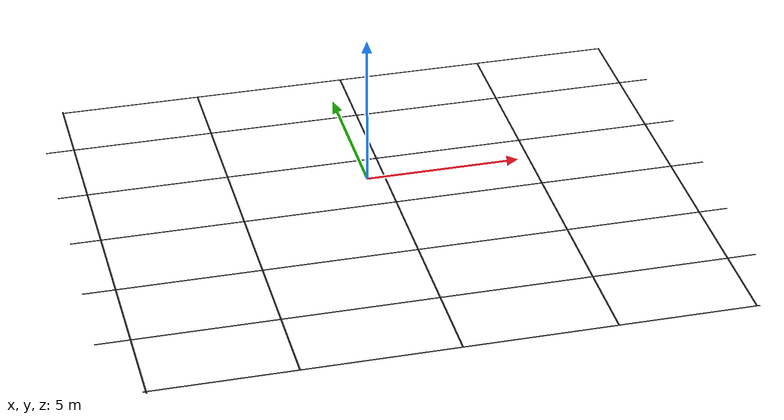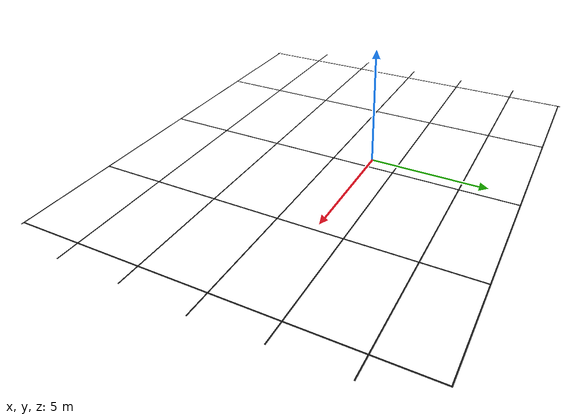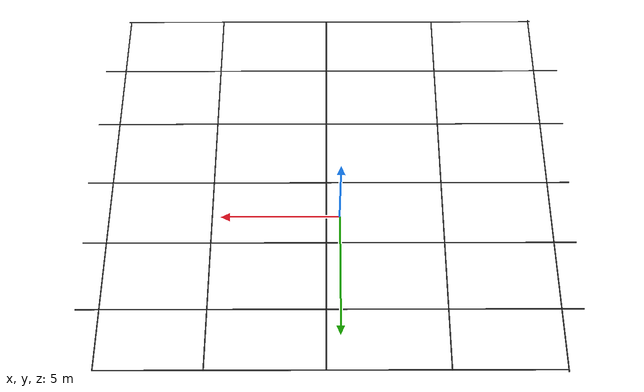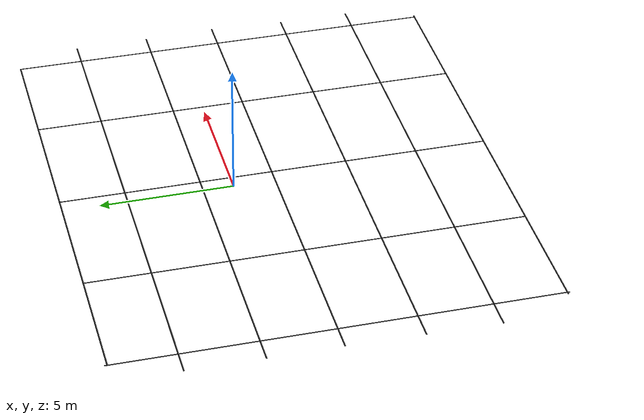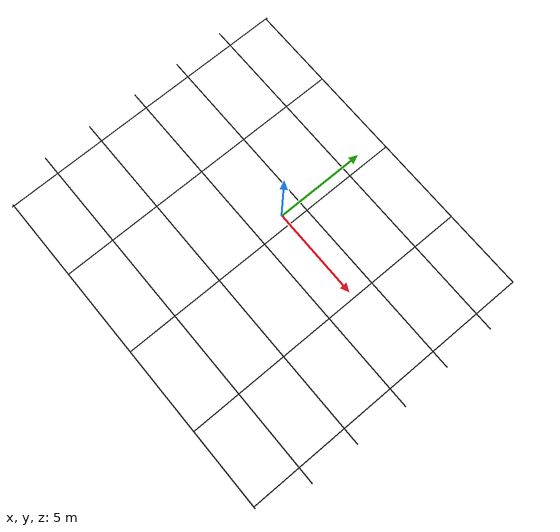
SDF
<?xml version='1.0'?>
<sdf version='1.4'>
  <model name='shop_floor_tape'>
    <link name='Wall_25'>
      <collision name='Wall_25_Collision'>
        <geometry>
          <box>
            <size>18.567 0.05 0.001</size>
          </box>
        </geometry>
        <pose>0 0 0.0005 0 -0 0</pose>
      </collision>
      <visual name='Wall_25_Visual'>
        <pose>0 0 0.0005 0 -0 0</pose>
        <geometry>
          <box>
            <size>18.567 0.05 0.001</size>
          </box>
        </geometry>
        <material>
          <script>
            <uri>file://media/materials/scripts/gazebo.material</uri>
            <name>Gazebo/Black</name>
          </script>
        </material>
      </visual>
      <velocity_decay>
        <linear>0</linear>
        <angular>0</angular>
      </velocity_decay>
      <pose>0.4085 6.385 0 0 -0 0</pose>
    </link>
    <link name='Wall_26'>
      <collision name='Wall_26_Collision'>
        <geometry>
          <box>
            <size>16.2403 0.05 0.001</size>
          </box>
        </geometry>
        <pose>0 0 0.0005 0 -0 0</pose>
      </collision>
      <visual name='Wall_26_Visual'>
        <pose>0 0 0.0005 0 -0 0</pose>
        <geometry>
          <box>
            <size>16.2403 0.05 0.001</size>
          </box>
        </geometry>
        <material>
          <script>
            <uri>file://media/materials/scripts/gazebo.material</uri>
            <name>Gazebo/Black</name>
          </script>
        </material>
      </visual>
      <velocity_decay>
        <linear>0</linear>
        <angular>0</angular>
      </velocity_decay>
      <pose>9.66695 -1.71016 0 0 0 -1.5708</pose>
    </link>
    <link name='Wall_27'>
      <collision name='Wall_27_Collision'>
        <geometry>
          <box>
            <size>18.7165 0.05 0.001</size>
          </box>
        </geometry>
        <pose>0 0 0.0005 0 -0 0</pose>
      </collision>
      <visual name='Wall_27_Visual'>
        <pose>0 0 0.0005 0 -0 0</pose>
        <geometry>
          <box>
            <size>18.7165 0.05 0.001</size>
          </box>
        </geometry>
        <material>
          <script>
            <uri>file://media/materials/scripts/gazebo.material</uri>
            <name>Gazebo/Black</name>
          </script>
        </material>
      </visual>
      <velocity_decay>
        <linear>0</linear>
        <angular>0</angular>
      </velocity_decay>
      <pose>0.408641 -9.80531 0 0 -0 3.14159</pose>
    </link>
    <link name='Wall_28'>
      <collision name='Wall_28_Collision'>
        <geometry>
          <box>
            <size>16.3903 0.05 0.001</size>
          </box>
        </geometry>
        <pose>0 0 0.0005 0 -0 0</pose>
      </collision>
      <visual name='Wall_28_Visual'>
        <pose>0 0 0.0005 0 -0 0</pose>
        <geometry>
          <box>
            <size>16.3903 0.05 0.001</size>
          </box>
        </geometry>
        <material>
          <script>
            <uri>file://media/materials/scripts/gazebo.material</uri>
            <name>Gazebo/Black</name>
          </script>
        </material>
      </visual>
      <velocity_decay>
        <linear>0</linear>
        <angular>0</angular>
      </velocity_decay>
      <pose>-8.84962 -1.71015 0 0 -0 1.5708</pose>
    </link>
    <link name='Wall_30'>
      <collision name='Wall_30_Collision'>
        <geometry>
          <box>
            <size>20.557 0.05 0.001</size>
          </box>
        </geometry>
        <pose>0 0 0.0005 0 -0 0</pose>
      </collision>
      <visual name='Wall_30_Visual'>
        <pose>0 0 0.0005 0 -0 0</pose>
        <geometry>
          <box>
            <size>20.557 0.05 0.001</size>
          </box>
        </geometry>
        <material>
          <script>
            <uri>file://media/materials/scripts/gazebo.material</uri>
            <name>Gazebo/Black</name>
          </script>
        </material>
      </visual>
      <velocity_decay>
        <linear>0</linear>
        <angular>0</angular>
      </velocity_decay>
      <pose>0.4735 -1.571 0 0 -0 0</pose>
    </link>
    <link name='Wall_33'>
      <collision name='Wall_33_Collision'>
        <geometry>
          <box>
            <size>20.398 0.05 0.001</size>
          </box>
        </geometry>
        <pose>0 0 0.0005 0 -0 0</pose>
      </collision>
      <visual name='Wall_33_Visual'>
        <pose>0 0 0.0005 0 -0 0</pose>
        <geometry>
          <box>
            <size>20.398 0.05 0.001</size>
          </box>
        </geometry>
        <material>
          <script>
            <uri>file://media/materials/scripts/gazebo.material</uri>
            <name>Gazebo/Black</name>
          </script>
        </material>
      </visual>
      <velocity_decay>
        <linear>0</linear>
        <angular>0</angular>
      </velocity_decay>
      <pose>0.44 3.966 0 0 -0 0</pose>
    </link>
    <link name='Wall_35'>
      <collision name='Wall_35_Collision'>
        <geometry>
          <box>
            <size>20.437 0.05 0.001</size>
          </box>
        </geometry>
        <pose>0 0 0.0005 0 -0 0</pose>
      </collision>
      <visual name='Wall_35_Visual'>
        <pose>0 0 0.0005 0 -0 0</pose>
        <geometry>
          <box>
            <size>20.437 0.05 0.001</size>
          </box>
        </geometry>
        <material>
          <script>
            <uri>file://media/materials/scripts/gazebo.material</uri>
            <name>Gazebo/Black</name>
          </script>
        </material>
      </visual>
      <velocity_decay>
        <linear>0</linear>
        <angular>0</angular>
      </velocity_decay>
      <pose>0.4295 1.147 0 0 -0 0</pose>
    </link>
    <link name='Wall_37'>
      <collision name='Wall_37_Collision'>
        <geometry>
          <box>
            <size>20.475 0.05 0.001</size>
          </box>
        </geometry>
        <pose>0 0 0.0005 0 -0 0</pose>
      </collision>
      <visual name='Wall_37_Visual'>
        <pose>0 0 0.0005 0 -0 0</pose>
        <geometry>
          <box>
            <size>20.475 0.05 0.001</size>
          </box>
        </geometry>
        <material>
          <script>
            <uri>file://media/materials/scripts/gazebo.material</uri>
            <name>Gazebo/Black</name>
          </script>
        </material>
      </visual>
      <velocity_decay>
        <linear>0</linear>
        <angular>0</angular>
      </velocity_decay>
      <pose>0.3645 -4.409 0 0 -0 0</pose>
    </link>
    <link name='Wall_39'>
      <collision name='Wall_39_Collision'>
        <geometry>
          <box>
            <size>20.5209 0.05 0.001</size>
          </box>
        </geometry>
        <pose>0 0 0.0005 0 -0 0</pose>
      </collision>
      <visual name='Wall_39_Visual'>
        <pose>0 0 0.0005 0 -0 0</pose>
        <geometry>
          <box>
            <size>20.5209 0.05 0.001</size>
          </box>
        </geometry>
        <material>
          <script>
            <uri>file://media/materials/scripts/gazebo.material</uri>
            <name>Gazebo/Black</name>
          </script>
        </material>
      </visual>
      <velocity_decay>
        <linear>0</linear>
        <angular>0</angular>
      </velocity_decay>
      <pose>0.3275 -7.13 0 0 -0 0</pose>
    </link>
    <link name='Wall_41'>
      <collision name='Wall_41_Collision'>
        <geometry>
          <box>
            <size>16.2228 0.05 0.001</size>
          </box>
        </geometry>
        <pose>0 0 0.0005 0 -0 0</pose>
      </collision>
      <visual name='Wall_41_Visual'>
        <pose>0 0 0.0005 0 -0 0</pose>
        <geometry>
          <box>
            <size>16.2228 0.05 0.001</size>
          </box>
        </geometry>
        <material>
          <script>
            <uri>file://media/materials/scripts/gazebo.material</uri>
            <name>Gazebo/Black</name>
          </script>
        </material>
      </visual>
      <velocity_decay>
        <linear>0</linear>
        <angular>0</angular>
      </velocity_decay>
      <pose>0.567 -1.7085 0 0 0 -1.5708</pose>
    </link>
    <link name='Wall_43'>
      <collision name='Wall_43_Collision'>
        <geometry>
          <box>
            <size>16.2128 0.05 0.001</size>
          </box>
        </geometry>
        <pose>0 0 0.0005 0 -0 0</pose>
      </collision>
      <visual name='Wall_43_Visual'>
        <pose>0 0 0.0005 0 -0 0</pose>
        <geometry>
          <box>
            <size>16.2128 0.05 0.001</size>
          </box>
        </geometry>
        <material>
          <script>
            <uri>file://media/materials/scripts/gazebo.material</uri>
            <name>Gazebo/Black</name>
          </script>
        </material>
      </visual>
      <velocity_decay>
        <linear>0</linear>
        <angular>0</angular>
      </velocity_decay>
      <pose>-4.325 -1.7135 0 0 0 -1.5708</pose>
    </link>
    <link name='Wall_45'>
      <collision name='Wall_45_Collision'>
        <geometry>
          <box>
            <size>16.202 0.05 0.001</size>
          </box>
        </geometry>
        <pose>0 0 0.0005 0 -0 0</pose>
      </collision>
      <visual name='Wall_45_Visual'>
        <pose>0 0 0.0005 0 -0 0</pose>
        <geometry>
          <box>
            <size>16.202 0.05 0.001</size>
          </box>
        </geometry>
        <material>
          <script>
            <uri>file://media/materials/scripts/gazebo.material</uri>
            <name>Gazebo/Black</name>
          </script>
        </material>
      </visual>
      <velocity_decay>
        <linear>0</linear>
        <angular>0</angular>
      </velocity_decay>
      <pose>5.352 -1.704 0 0 0 -1.5708</pose>
    </link>
    <static>1</static>
  </model>
</sdf>
